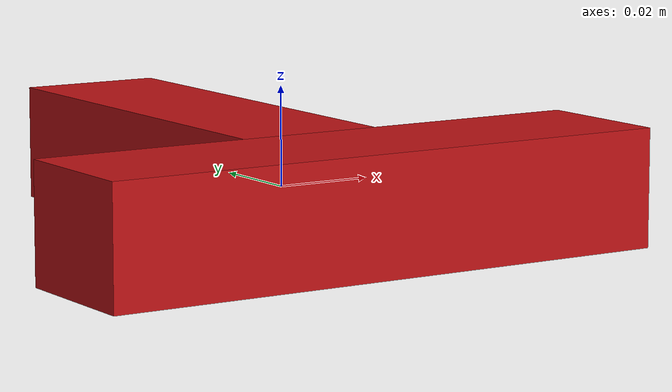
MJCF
<mujoco model="push_t">
  <default>
    <default class="collision">
      <geom
        contype="1"
        conaffinity="1"
        solref="0.01 1"
        solimp="0.95 0.99 0.0002 0.5 2"
      />
    </default>
    <default class="visual">
      <geom contype="0" conaffinity="0" mass="0" />
    </default>
  </default>

  <asset>
    <material
      name="push_t_red"
      rgba="0.7607843137254902 0.07450980392156863 0.08627450980392157 1"
    />
  </asset>

  <worldbody>
    <body name="push_t">
      <freejoint name="push_t_joint" />
      <geom
        name="push_t_crossbar_collision"
        class="collision"
        type="box"
        size="0.06 0.015 0.012"
        pos="0 -0.02571428571 0"
        mass="0.0289714286"
        group="5"
        rgba="0 0 0 0"
      />
      <geom
        name="push_t_stem_collision"
        class="collision"
        type="box"
        size="0.015 0.045 0.012"
        pos="0 0.03428571429 0"
        mass="0.0217285714"
        group="5"
        rgba="0 0 0 0"
      />
      <geom
        name="push_t_crossbar_visual"
        class="visual"
        type="box"
        size="0.06 0.015 0.012"
        pos="0 -0.02571428571 0"
        material="push_t_red"
      />
      <geom
        name="push_t_stem_visual"
        class="visual"
        type="box"
        size="0.015 0.045 0.012"
        pos="0 0.03428571429 0"
        material="push_t_red"
      />
    </body>
  </worldbody>
</mujoco>
